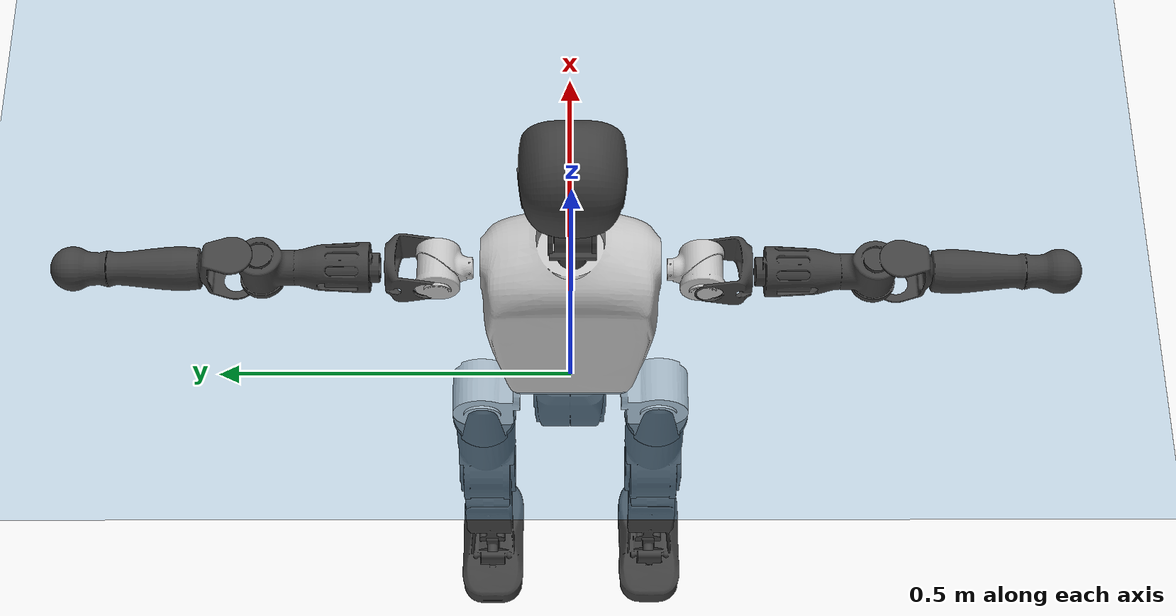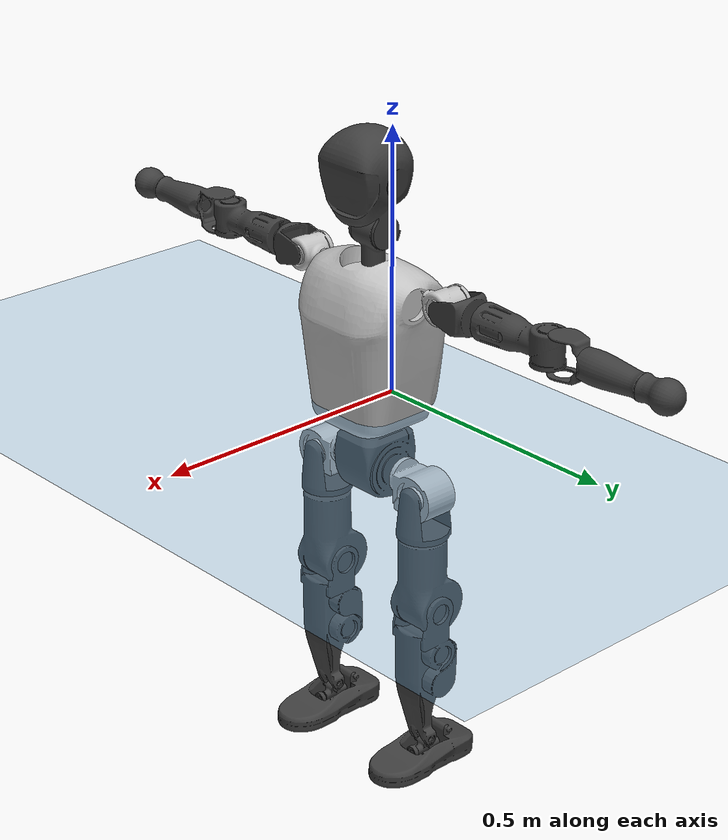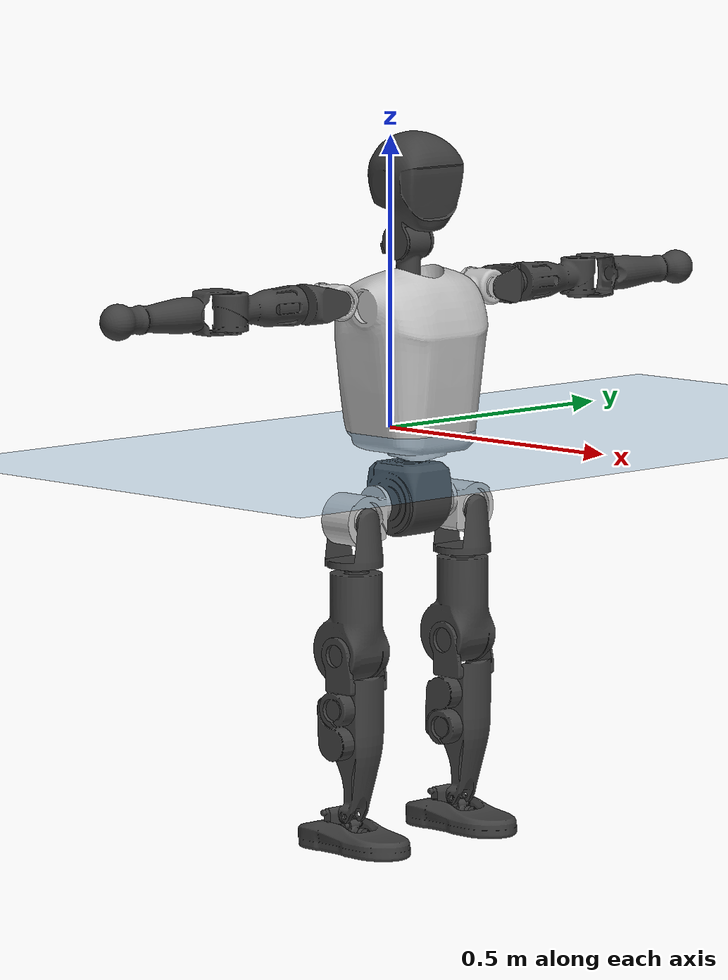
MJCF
<mujoco model="T1">
  <compiler angle="radian" assetdir="assets" balanceinertia="true" inertiafromgeom="false"/>

  <option timestep="0.005" density="1.2" viscosity="2e-05"/>

  <size nkey="1"/>

  <visual>
    <quality shadowsize="8192"/>
    <map shadowclip="0.5"/>
  </visual>

  <default>
    <default class="/">
      <joint armature="0.01" damping="0.01" frictionloss="0.1"/>
      <geom contype="0" conaffinity="0" group="1" solref="-1000 -80"/>
      <site size="0.01 0.005 0.005" group="5"/>
      <general forcelimited="true" biastype="affine" gainprm="25" biasprm="0 -25 -0.6"/>
      <default class="t1">
        <geom rgba="0.25 0.25 0.25 1"/>
        <default class="visual">
          <geom type="mesh" group="2"/>
        </default>
        <default class="collision">
          <geom group="3"/>
        </default>
        <default class="foot">
          <geom size="0.1115 0.05 0.015" type="box" condim="6" group="4" priority="1" solimp="0.015 1 0.015"/>
        </default>
        <default class="reward_collision_sphere">
          <geom group="5" rgba="1 0 0 1"/>
        </default>
      </default>
    </default>
  </default>

  <asset>
    <texture type="skybox" colorspace="auto" name="//unnamed_texture_0" builtin="gradient" rgb1="0.95 0.95 0.95" rgb2="0.95 0.95 0.95" width="100" height="600"/>
    <texture type="2d" colorspace="auto" name="texplane" builtin="checker" rgb1="0.345 0.575 0.748" rgb2="0.345 0.575 0.748" markrgb="1 1 1" width="512" height="512"/>
    <material name="MatPlane" class="/" texture="texplane" texuniform="true" texrepeat="2 2" specular="0.9"/>
    <mesh name="Trunk" class="/" file="Trunk.stl"/>
    <mesh name="H1" class="/" file="H1.stl"/>
    <mesh name="H2" class="/" file="H2.stl"/>
    <mesh name="AL1" class="/" file="AL1.stl"/>
    <mesh name="AL2" class="/" file="AL2.stl"/>
    <mesh name="AL3" class="/" file="AL3.stl"/>
    <mesh name="left_hand_link" class="/" file="left_hand_link.stl"/>
    <mesh name="AR1" class="/" file="AR1.stl"/>
    <mesh name="AR2" class="/" file="AR2.stl"/>
    <mesh name="AR3" class="/" file="AR3.stl"/>
    <mesh name="right_hand_link" class="/" file="right_hand_link.stl"/>
    <mesh name="Waist" class="/" file="Waist.stl"/>
    <mesh name="Hip_Pitch_Left" class="/" file="Hip_Pitch_Left.stl"/>
    <mesh name="Hip_Roll_Left" class="/" file="Hip_Roll_Left.stl"/>
    <mesh name="Hip_Yaw_Left" class="/" file="Hip_Yaw_Left.stl"/>
    <mesh name="Shank_Left" class="/" file="Shank_Left.stl"/>
    <mesh name="Ankle_Cross_Left" class="/" file="Ankle_Cross_Left.stl"/>
    <mesh name="left_foot_link" class="/" file="left_foot_link.stl"/>
    <mesh name="Hip_Pitch_Right" class="/" file="Hip_Pitch_Right.stl"/>
    <mesh name="Hip_Roll_Right" class="/" file="Hip_Roll_Right.stl"/>
    <mesh name="Hip_Yaw_Right" class="/" file="Hip_Yaw_Right.stl"/>
    <mesh name="Shank_Right" class="/" file="Shank_Right.stl"/>
    <mesh name="Ankle_Cross_Right" class="/" file="Ankle_Cross_Right.stl"/>
    <mesh name="right_foot_link" class="/" file="right_foot_link.stl"/>
  </asset>

  <worldbody>
    <geom name="floor" class="/" size="100 100 0.125" type="plane" group="0" material="MatPlane"/>
    <light name="toplight_shadow" class="/" pos="0 0 5" dir="0.0990148 0.0990148 -0.990148" type="directional" ambient="0.04 0.04 0.04" diffuse="0.55 0.55 0.55" specular="0.12 0.12 0.12"/>
    <light name="toplight_fill" class="/" pos="0 0 5" dir="0.0990148 0.0990148 -0.990148" type="directional" castshadow="false" ambient="0.04 0.04 0.04" diffuse="0.3 0.3 0.3" specular="0.08 0.08 0.08"/>
    <body name="trunk" childclass="t1" pos="-0.000157572 0.000899895 0.00100778" quat="1 -7.67961e-06 2.91957e-05 3.10891e-05">
      <inertial pos="0.0384447 0.00221078 0.113226" quat="0.99994 0.00270555 -0.0101809 -0.0031521" mass="11.6363" diaginertia="0.0157064 0.214861 0.0741197"/>
      <joint name="//unnamed_joint_0" type="free" armature="0" damping="0" frictionloss="0"/>
      <geom name="//unnamed_geom_1" class="visual" rgba="0.76 0.76 0.76 1" mesh="Trunk"/>
      <geom name="//unnamed_geom_2" class="collision" size="0.0746307 0.0995076 0.149261" pos="0.0421425 0 0.126674" type="box"/>
      <geom name="//unnamed_geom_3" class="reward_collision_sphere" size="0.114434" pos="0.0421425 0 0.105562"/>
      <geom name="//unnamed_geom_4" class="reward_collision_sphere" size="0.0149261" pos="0.0421425 0.104315 0"/>
      <geom name="//unnamed_geom_5" class="reward_collision_sphere" size="0.0149261" pos="0.0421425 -0.104315 0"/>
      <geom name="//unnamed_geom_6" class="reward_collision_sphere" size="0.0149261" pos="0.0421425 0.131314 0.190011"/>
      <geom name="//unnamed_geom_7" class="reward_collision_sphere" size="0.0149261" pos="0.0421425 -0.131314 0.190011"/>
      <site name="imu" pos="-0.00127067 0.00165872 -0.0050577" size="0.00995076"/>
      <camera name="track" pos="0 -2.45447 0" quat="0.707107 0.707107 0 0" mode="trackcom"/>
      <camera name="ego_camera" pos="0.0856897 0 0.44336" quat="-0.5 -0.5 0.5 0.5"/>
      <body name="H1" pos="0.0439651 -0.00234634 0.258188" quat="1 -7.1541e-05 4.25978e-05 -2.05538e-05">
        <inertial pos="-0.000762197 0.000754931 0.0610895" quat="0.769612 -0.0180761 0.00533766 0.638234" mass="0.426288" diaginertia="4.01275e-05 0.000606631 0.000197963"/>
        <joint name="AAHead_yaw" pos="0 0 0" axis="0.000598412 -0.00351972 0.999994" range="-1.57339 1.52369" armature="0.0097664" damping="0.0182272" frictionloss="0.0864988"/>
        <geom name="//unnamed_geom_8" class="visual" mesh="H1"/>
        <body name="H2" pos="-0.00124229 0.000757078 0.0630569" quat="1 -0.000203169 6.91437e-05 0.00014993">
          <inertial pos="0.00603367 -0.00113377 0.105156" quat="0.989901 0.102926 -0.0703691 -0.0674555" mass="0.626918" diaginertia="0.000347829 0.00538854 0.00231223"/>
          <joint name="Head_pitch" pos="0 0 0" axis="0.00146079 -0.999991 0.00407103" range="-1.23211 0.347152" armature="0.0100277" damping="0.0112247" frictionloss="0.0955009"/>
          <geom name="//unnamed_geom_9" class="visual" mesh="H2"/>
          <geom name="//unnamed_geom_10" class="collision" size="0.0796061" pos="0.00702374 0 0.116118"/>
          <geom name="//unnamed_geom_11" class="reward_collision_sphere" size="0.0895569" pos="0.0140475 0 0.105562"/>
        </body>
      </body>
      <body name="AL1" pos="0.0405147 0.131606 0.231593" quat="0.999999 -0.00111477 0.00105457 9.12583e-05">
        <inertial pos="-0.00047912 0.055388 0.000462806" quat="0.504462 0.504869 -0.502713 0.487755" mass="0.519124" diaginertia="0.000230697 0.00370419 0.000385893"/>
        <joint name="Left_Shoulder_Pitch" pos="0 0 0" axis="-0.000479324 1 0.000194083" stiffness="0.00292019" range="-3.3283 1.26037" armature="0.00990036" damping="0.0132869" frictionloss="0.100208"/>
        <geom name="//unnamed_geom_12" class="visual" rgba="0.76 0.76 0.76 1" mesh="AL1"/>
        <body name="AL2" pos="0.000947452 0.0605398 -0.000684819" quat="1 -0.000173917 0.000202731 -0.000156313">
          <inertial pos="0.00513474 0.0490473 1.72263e-05" quat="0.477714 0.51044 -0.493499 0.517397" mass="0.157828" diaginertia="6.91023e-05 0.000968838 0.000239891"/>
          <joint name="Left_Shoulder_Roll" pos="0 0 0" axis="-0.999998 0.00167962 0.001014" stiffness="0.000777266" range="-1.57513 1.74175" armature="0.00931818" damping="0.0104645" frictionloss="0.103318"/>
          <geom name="//unnamed_geom_13" class="visual" mesh="AL2"/>
          <body name="AL3" pos="0.000387346 0.0772457 0.000877751" quat="1 -1.73357e-05 0.000184076 -1.28466e-05">
            <inertial pos="-0.00264683 0.105304 -0.00062432" quat="0.703481 0.710712 -8.7791e-05 0.00141861" mass="1.04708" diaginertia="0.00228103 0.0361899 0.000822178"/>
            <joint name="Left_Elbow_Pitch" pos="0 0 0" axis="-0.00154782 -0.999999 0.00074919" range="-2.27939 2.31655" armature="0.0102871" damping="0.0163855" frictionloss="0.0994243"/>
            <geom name="//unnamed_geom_14" class="visual" mesh="AL3"/>
            <geom name="//unnamed_geom_15" class="collision" size="0.0298523 0.0746307" pos="0 0.0613618 0" quat="0.707105 0.707108 0 0" type="cylinder"/>
            <geom name="//unnamed_geom_16" class="reward_collision_sphere" size="0.0358228"/>
            <body name="left_hand_link" pos="-0.000116599 0.183375 -0.00178356" quat="1 -3.68114e-05 -9.83716e-05 7.75838e-05">
              <inertial pos="0.000524681 0.134535 0.00108002" quat="0.70937 0.704819 0.00376265 -0.0031256" mass="0.320779" diaginertia="0.00136192 0.0225606 0.000281971"/>
              <joint name="Left_Elbow_Yaw" pos="0 0 0" axis="0.0070512 -0.00423865 0.999966" stiffness="0.00836477" range="-2.49225 -0.0121441" armature="0.0100416" damping="0" frictionloss="0.107859"/>
              <geom name="//unnamed_geom_17" class="visual" mesh="left_hand_link"/>
              <geom name="//unnamed_geom_18" class="collision" size="0.0298523 0.0870692" pos="0 0.159541 0" quat="0.707105 0.707108 0 0" type="cylinder"/>
              <geom name="//unnamed_geom_19" class="reward_collision_sphere" size="0.0497538"/>
              <geom name="//unnamed_geom_20" class="reward_collision_sphere" size="0.0348277" pos="0 0.134996 0"/>
              <geom name="//unnamed_geom_21" class="reward_collision_sphere" size="0.0348277" pos="0 0.263856 0"/>
            </body>
          </body>
        </body>
      </body>
      <body name="AR1" pos="0.0387445 -0.129726 0.230363" quat="1 -0.000115227 0.000604005 -0.000254221">
        <inertial pos="-0.00147307 -0.0551496 -0.00255335" quat="0.495373 0.501651 -0.509548 0.493267" mass="0.530427" diaginertia="0.000231774 0.00355224 0.000385254"/>
        <joint name="Right_Shoulder_Pitch" pos="0 0 0" axis="-0.00341438 -0.999994 0.000798131" stiffness="0.00765715" range="-1.22835 3.31282" armature="0.0101128" damping="0" frictionloss="0.0868411"/>
        <geom name="//unnamed_geom_22" class="visual" rgba="0.76 0.76 0.76 1" mesh="AR1"/>
        <body name="AR2" pos="-0.00200027 -0.0567527 3.29776e-05" quat="1 1.31061e-05 -3.90589e-05 -3.74854e-05">
          <inertial pos="0.0024288 -0.0491328 -0.000558912" quat="0.504051 0.497089 -0.51285 0.485613" mass="0.156678" diaginertia="6.80532e-05 0.00094898 0.000230735"/>
          <joint name="Right_Shoulder_Roll" pos="0 0 0" axis="-0.999992 0.000423993 -0.00391831" stiffness="0.00720329" range="-1.73556 1.57466" armature="0.0100175" damping="0" frictionloss="0.0944509"/>
          <geom name="//unnamed_geom_23" class="visual" mesh="AR2"/>
          <body name="AR3" pos="-0.00141842 -0.0741135 0.000498357" quat="1 0.000185786 8.74611e-05 0.000121329">
            <inertial pos="-0.00135581 -0.105094 0.000791033" quat="0.708608 0.705592 -0.00166491 -0.00330432" mass="1.00922" diaginertia="0.00221202 0.0346396 0.000827699"/>
            <joint name="Right_Elbow_Pitch" pos="0 0 0" axis="0.00419286 0.999991 -2.08622e-05" range="-2.27035 2.24609" armature="0.00985928" damping="0.00877384" frictionloss="0.0961929"/>
            <geom name="//unnamed_geom_24" class="visual" mesh="AR3"/>
            <geom name="//unnamed_geom_25" class="collision" size="0.0298523 0.0746307" pos="0 -0.0613618 0" quat="0.707105 0.707108 0 0" type="cylinder"/>
            <geom name="//unnamed_geom_26" class="reward_collision_sphere" size="0.0358228"/>
            <body name="right_hand_link" pos="-0.00130301 -0.178512 0.00218675" quat="1 -0.000449453 -0.000149569 -8.92285e-05">
              <inertial pos="-0.000364019 -0.133252 -6.30521e-05" quat="0.705546 0.708653 0.00290476 -0.0028451" mass="0.327309" diaginertia="0.00138408 0.0224427 0.000283563"/>
              <joint name="Right_Elbow_Yaw" pos="0 0 0" axis="-0.000528327 -0.00223107 0.999997" range="0.0133829 2.43994" armature="0.00969138" damping="0.00774602" frictionloss="0.11183"/>
              <geom name="//unnamed_geom_27" class="visual" mesh="right_hand_link"/>
              <geom name="//unnamed_geom_28" class="collision" size="0.0298523 0.0870692" pos="0 -0.159541 0" quat="0.707105 0.707108 0 0" type="cylinder"/>
              <geom name="//unnamed_geom_29" class="reward_collision_sphere" size="0.0497538"/>
              <geom name="//unnamed_geom_30" class="reward_collision_sphere" size="0.0348277" pos="0 -0.134996 0"/>
              <geom name="//unnamed_geom_31" class="reward_collision_sphere" size="0.0348277" pos="0 -0.263856 0"/>
            </body>
          </body>
        </body>
      </body>
      <body name="Waist" pos="0.0430132 0.000623632 -0.123883" quat="1 7.57369e-05 -5.58743e-05 6.43736e-05">
        <inertial pos="-0.00125672 -0.0013666 0.00703281" quat="0.983745 -0.000461716 -0.179542 0.00316506" mass="2.48771" diaginertia="0.000884279 0.0145997 0.00611898"/>
        <joint name="Waist" pos="0 0 0" axis="-0.004031 -0.00429366 0.999983" stiffness="0.00199573" range="-1.57374 1.56275" armature="0.010457" damping="0.0154622" frictionloss="0.0994451"/>
        <geom name="//unnamed_geom_32" class="visual" mesh="Waist"/>
        <body name="Hip_Pitch_Left" pos="-0.000282958 0.129407 -0.00204266" quat="1 5.58571e-05 -0.000256086 5.92517e-05">
          <inertial pos="0.000601409 -0.00750674 -0.0182601" quat="0.975125 0.221118 0.0154035 0.000757245" mass="1.03283" diaginertia="0.000308194 0.00409354 0.00163183"/>
          <joint name="Left_Hip_Pitch" pos="0 0 0" axis="-0.00143097 0.999995 0.0028945" range="-1.79909 1.61968" armature="0.0111755" damping="0.012846" frictionloss="0.0948966"/>
          <geom name="//unnamed_geom_33" class="visual" rgba="0.76 0.76 0.76 1" mesh="Hip_Pitch_Left"/>
          <body name="Hip_Roll_Left" pos="0.00227555 -0.000613991 -0.0227894" quat="1 0.000374488 0.000118478 -0.000392008">
            <inertial pos="0.00132377 -0.00024102 -0.0571153" quat="0.709429 -0.00375103 0.00611026 0.704741" mass="0.363044" diaginertia="0.000287647 0.0041727 0.000667205"/>
            <joint name="Left_Hip_Roll" pos="0 0 0" axis="-0.999967 0.00810394 0.00103291" stiffness="0.00528189" range="-1.57002 0.187573" armature="0.0111499" damping="0.0173306" frictionloss="0.0983213"/>
            <geom name="//unnamed_geom_34" class="visual" mesh="Hip_Roll_Left"/>
            <geom name="//unnamed_geom_35" class="reward_collision_sphere" size="0.0547292"/>
            <body name="Hip_Yaw_Left" pos="-0.00083451 -0.000911211 -0.0844273" quat="1 -5.47664e-05 0.000275872 -1.0132e-05">
              <inertial pos="-0.00684745 -0.00137908 -0.0936952" quat="0.696637 -0.0338458 -0.0319945 0.71591" mass="2.16003" diaginertia="0.0043668 0.0681636 0.00337173"/>
              <joint name="Left_Hip_Yaw" pos="0 0 0" axis="-0.00258756 -2.38334e-05 -0.999997" stiffness="0.00252559" range="-1.01357 1.0524" armature="0.00982807" damping="0.00630132" frictionloss="0.100599"/>
              <geom name="//unnamed_geom_36" class="visual" mesh="Hip_Yaw_Left"/>
              <geom name="//unnamed_geom_37" class="collision" size="0.0497538 0.0796061" type="cylinder"/>
              <body name="Shank_Left" pos="-0.00693111 -2.98961e-05 -0.143061" quat="1 9.03451e-05 -1.63118e-05 -0.00016765">
                <inertial pos="-0.00357844 0.00247257 -0.129123" quat="0.997547 0.00141697 -0.0240406 0.0657309" mass="1.64089" diaginertia="0.00590868 0.0956376 0.00239427"/>
                <joint name="Left_Knee_Pitch" pos="0 0 0" axis="0.000526345 0.999991 0.00418979" range="-0.00787905 2.34966" armature="0.00987765" damping="0.0111806" frictionloss="0.104085"/>
                <geom name="//unnamed_geom_38" class="visual" mesh="Shank_Left"/>
                <geom name="//unnamed_geom_39" class="collision" size="0.0497538 0.0746307" pos="0 0 -0.126674" type="cylinder"/>
                <geom name="//unnamed_geom_40" class="reward_collision_sphere" size="0.06468"/>
                <body name="Ankle_Cross_Left" pos="-0.00103243 3.92979e-05 -0.294151" quat="1 2.19984e-05 -1.33453e-05 3.77599e-05">
                  <inertial pos="-0.0019162 0.00144637 -0.00830223" quat="0.439214 0.554256 0.547404 0.447481" mass="0.073253" diaginertia="5.06734e-06 7.05706e-05 1.4796e-05"/>
                  <joint name="Left_Ankle_Pitch" pos="0 0 0" axis="-0.000395416 1 0.000349785" range="-0.821157 0.338455" armature="0.00998628" damping="0.0159818" frictionloss="0.0943141"/>
                  <geom name="//unnamed_geom_41" class="visual" mesh="Ankle_Cross_Left"/>
                  <body name="left_foot_link" pos="0.00111143 -0.00114695 -0.0110158" quat="1 0.00019949 -0.000147038 -6.60912e-05">
                    <inertial pos="-0.00171386 -0.000127184 -0.0114772" quat="0.0018531 0.62302 0.00395346 0.782193" mass="0.661432" diaginertia="0.000435901 0.00648608 0.00288133"/>
                    <joint name="Left_Ankle_Roll" pos="0 0 0" axis="-0.999998 -0.00207432 -0.000201001" range="-0.433888 0.439774" armature="0.010049" damping="0.0165873" frictionloss="0.100049"/>
                    <geom name="//unnamed_geom_42" class="visual" mesh="left_foot_link"/>
                    <geom name="left_foot" class="foot" size="0.104042 0.0488408 0.0155913" pos="0.00702374 0 -0.0158343"/>
                    <geom name="//unnamed_geom_44" class="reward_collision_sphere" size="0.051744" pos="0.00702374 0 -0.0158343"/>
                    <geom name="//unnamed_geom_45" class="reward_collision_sphere" size="0.0298523" pos="0.0667256 -0.0282264 -0.0158343"/>
                    <geom name="//unnamed_geom_46" class="reward_collision_sphere" size="0.0298523" pos="-0.0491662 -0.0282264 -0.0158343"/>
                    <site name="left_foot" class="foot" pos="0.00702374 0 -0.0158343" size="0.00995076"/>
                  </body>
                </body>
              </body>
            </body>
          </body>
        </body>
        <body name="Hip_Pitch_Right" pos="-0.000385556 -0.131014 -8.15635e-05" quat="1 -0.000126522 0.000356443 -0.00081645">
          <inertial pos="-0.00141958 0.0103167 -0.0166946" quat="0.973353 -0.228922 0.0133559 0.000864749" mass="1.02144" diaginertia="0.000312835 0.00418312 0.00160611"/>
          <joint name="Right_Hip_Pitch" pos="0 0 0" axis="-0.000286001 -1 -0.000281379" range="-1.56966 1.74688" armature="0.00945595" damping="0.0113328" frictionloss="0.0999231"/>
          <geom name="//unnamed_geom_47" class="visual" rgba="0.76 0.76 0.76 1" mesh="Hip_Pitch_Right"/>
          <body name="Hip_Roll_Right" pos="0.0022005 0.000328394 -0.0226076" quat="1 -0.000121342 -3.88026e-05 -9.1382e-05">
            <inertial pos="0.00110531 -0.00121461 -0.0557974" quat="0.700615 0.0022477 -0.00260394 0.713531" mass="0.386168" diaginertia="0.000298391 0.00436313 0.000678771"/>
            <joint name="Right_Hip_Roll" pos="0 0 0" axis="-0.999989 0.00099997 0.004505" stiffness="0.00105749" range="-0.14911 1.59288" armature="0.0100051" damping="0.00769881" frictionloss="0.0994615"/>
            <geom name="//unnamed_geom_48" class="visual" mesh="Hip_Roll_Right"/>
            <geom name="//unnamed_geom_49" class="reward_collision_sphere" size="0.0547292"/>
            <body name="Hip_Yaw_Right" pos="0.00111658 0.00100632 -0.0874787" quat="1 -0.000217051 1.78883e-06 -0.000236226">
              <inertial pos="-0.00494336 -0.000564683 -0.0967272" quat="0.716763 -0.0285663 -0.0310794 0.696037" mass="2.09066" diaginertia="0.00437465 0.0699028 0.0033374"/>
              <joint name="Right_Hip_Yaw" pos="0 0 0" axis="0.0117641 -0.0106714 -0.999874" stiffness="0.00438837" range="-1.00458 0.989205" armature="0.0109955" damping="0" frictionloss="0.0996016"/>
              <geom name="//unnamed_geom_50" class="visual" mesh="Hip_Yaw_Right"/>
              <geom name="//unnamed_geom_51" class="collision" size="0.0497538 0.0796061" type="cylinder"/>
              <body name="Shank_Right" pos="-0.00880635 -0.000725027 -0.139707" quat="1 0.000120117 -3.46774e-05 6.03557e-05">
                <inertial pos="-0.00449257 -0.000936826 -0.131228" quat="0.999295 -0.00096162 -0.0219979 -0.0304078" mass="1.82593" diaginertia="0.00628796 0.100179 0.00264537"/>
                <joint name="Right_Knee_Pitch" pos="0 0 0" axis="-0.000769682 -0.999998 0.00196297" range="-2.29282 -0.0170765" armature="0.0111998" damping="0.0134002" frictionloss="0.099712"/>
                <geom name="//unnamed_geom_52" class="visual" mesh="Shank_Right"/>
                <geom name="//unnamed_geom_53" class="collision" size="0.0497538 0.0746307" pos="0 0 -0.126674" type="cylinder"/>
                <geom name="//unnamed_geom_54" class="reward_collision_sphere" size="0.06468"/>
                <body name="Ankle_Cross_Right" pos="-3.39205e-05 -0.00144097 -0.296554" quat="1 -0.000127824 -4.67826e-06 -6.74058e-05">
                  <inertial pos="-0.00226743 -0.000520708 -0.00843287" quat="0.443762 0.554308 0.548448 0.441614" mass="0.0713676" diaginertia="5.0403e-06 7.24711e-05 1.47755e-05"/>
                  <joint name="Right_Ankle_Pitch" pos="0 0 0" axis="0.000179885 -1 5.29353e-05" range="-0.391721 0.825215" armature="0.00993915" damping="0.00941304" frictionloss="0.103736"/>
                  <geom name="//unnamed_geom_55" class="visual" mesh="Ankle_Cross_Right"/>
                  <body name="right_foot_link" pos="0.00260894 -0.000919465 -0.0131451" quat="1 -1.74753e-05 1.14652e-05 6.85436e-05">
                    <inertial pos="-0.00265191 0.000701133 -0.00938827" quat="0.000255036 0.620901 0.00039338 0.783889" mass="0.679857" diaginertia="0.00046324 0.00653996 0.0028982"/>
                    <joint name="Right_Ankle_Roll" pos="0 0 0" axis="-0.999994 -0.00172788 -0.00309783" range="-0.488854 0.437897" armature="0.0100419" damping="0" frictionloss="0.0986707"/>
                    <geom name="//unnamed_geom_56" class="visual" mesh="right_foot_link"/>
                    <geom name="right_foot" class="foot" size="0.101043 0.0462269 0.0152679" pos="0.00702374 0 -0.0158343"/>
                    <geom name="//unnamed_geom_58" class="reward_collision_sphere" size="0.0398031"/>
                    <geom name="//unnamed_geom_59" class="reward_collision_sphere" size="0.0298523" pos="0.00702374 0 -0.0158343"/>
                    <geom name="//unnamed_geom_60" class="reward_collision_sphere" size="0.0298523" pos="0.0667256 0.0282264 -0.0158343"/>
                    <geom name="//unnamed_geom_61" class="reward_collision_sphere" size="0.0298523" pos="-0.0491662 0.0282264 -0.0158343"/>
                    <site name="right_foot" class="foot" pos="0.00702374 0 -0.0158343" size="0.00995076"/>
                  </body>
                </body>
              </body>
            </body>
          </body>
        </body>
      </body>
    </body>
  </worldbody>

  <contact>
    <pair class="/" geom1="floor" geom2="left_foot" name="//unnamed_contact_0"/>
    <pair class="/" geom1="floor" geom2="right_foot" name="//unnamed_contact_1"/>
  </contact>

  <actuator>
    <general name="AAHead_yaw" class="/" joint="AAHead_yaw" forcerange="-6.68908 6.68908" gainprm="24.0432" biasprm="0 -24.0432 -0.586345"/>
    <general name="Head_pitch" class="/" joint="Head_pitch" forcerange="-6.94477 6.94477" gainprm="24.0432" biasprm="0 -24.0432 -0.586345"/>
    <general name="Left_Shoulder_Pitch" class="/" joint="Left_Shoulder_Pitch" forcerange="-17.5514 17.5514" gainprm="24.0432" biasprm="0 -24.0432 -0.586345"/>
    <general name="Left_Shoulder_Roll" class="/" joint="Left_Shoulder_Roll" forcerange="-18.4826 18.4826" gainprm="24.0432" biasprm="0 -24.0432 -0.586345"/>
    <general name="Left_Elbow_Pitch" class="/" joint="Left_Elbow_Pitch" forcerange="-18.1501 18.1501" gainprm="24.0432" biasprm="0 -24.0432 -0.586345"/>
    <general name="Left_Elbow_Yaw" class="/" joint="Left_Elbow_Yaw" forcerange="-18.7532 18.7532" gainprm="24.0432" biasprm="0 -24.0432 -0.586345"/>
    <general name="Right_Shoulder_Pitch" class="/" joint="Right_Shoulder_Pitch" forcerange="-17.3205 17.3205" gainprm="24.0432" biasprm="0 -24.0432 -0.586345"/>
    <general name="Right_Shoulder_Roll" class="/" joint="Right_Shoulder_Roll" forcerange="-17.8267 17.8267" gainprm="24.0432" biasprm="0 -24.0432 -0.586345"/>
    <general name="Right_Elbow_Pitch" class="/" joint="Right_Elbow_Pitch" forcerange="-19.5714 19.5714" gainprm="24.0432" biasprm="0 -24.0432 -0.586345"/>
    <general name="Right_Elbow_Yaw" class="/" joint="Right_Elbow_Yaw" forcerange="-17.1366 17.1366" gainprm="24.0432" biasprm="0 -24.0432 -0.586345"/>
    <general name="Waist" class="/" joint="Waist" forcerange="-29.0038 29.0038" gainprm="24.0432" biasprm="0 -24.0432 -0.586345"/>
    <general name="Left_Hip_Pitch" class="/" joint="Left_Hip_Pitch" forcerange="-45.0614 45.0614" gainprm="24.0432" biasprm="0 -24.0432 -0.586345"/>
    <general name="Left_Hip_Roll" class="/" joint="Left_Hip_Roll" forcerange="-31.5792 31.5792" gainprm="24.0432" biasprm="0 -24.0432 -0.586345"/>
    <general name="Left_Hip_Yaw" class="/" joint="Left_Hip_Yaw" forcerange="-27.8173 27.8173" gainprm="24.0432" biasprm="0 -24.0432 -0.586345"/>
    <general name="Left_Knee_Pitch" class="/" joint="Left_Knee_Pitch" forcerange="-59.077 59.077" gainprm="24.0432" biasprm="0 -24.0432 -0.586345"/>
    <general name="Left_Ankle_Pitch" class="/" joint="Left_Ankle_Pitch" forcerange="-20.1549 20.1549" gainprm="24.0432" biasprm="0 -24.0432 -0.586345"/>
    <general name="Left_Ankle_Roll" class="/" joint="Left_Ankle_Roll" forcerange="-16.1498 16.1498" gainprm="24.0432" biasprm="0 -24.0432 -0.586345"/>
    <general name="Right_Hip_Pitch" class="/" joint="Right_Hip_Pitch" forcerange="-44.7637 44.7637" gainprm="24.0432" biasprm="0 -24.0432 -0.586345"/>
    <general name="Right_Hip_Roll" class="/" joint="Right_Hip_Roll" forcerange="-29.53 29.53" gainprm="24.0432" biasprm="0 -24.0432 -0.586345"/>
    <general name="Right_Hip_Yaw" class="/" joint="Right_Hip_Yaw" forcerange="-32.7315 32.7315" gainprm="24.0432" biasprm="0 -24.0432 -0.586345"/>
    <general name="Right_Knee_Pitch" class="/" joint="Right_Knee_Pitch" forcerange="-59.7336 59.7336" gainprm="24.0432" biasprm="0 -24.0432 -0.586345"/>
    <general name="Right_Ankle_Pitch" class="/" joint="Right_Ankle_Pitch" forcerange="-20.447 20.447" gainprm="24.0432" biasprm="0 -24.0432 -0.586345"/>
    <general name="Right_Ankle_Roll" class="/" joint="Right_Ankle_Roll" forcerange="-14.6972 14.6972" gainprm="24.0432" biasprm="0 -24.0432 -0.586345"/>
  </actuator>

  <sensor>
    <gyro site="imu" name="imu_angular_velocity"/>
    <velocimeter site="imu" name="imu_linear_velocity"/>
    <framelinvel objtype="site" objname="left_foot" name="left_foot_global_linear_velocity"/>
    <framelinvel objtype="site" objname="right_foot" name="right_foot_global_linear_velocity"/>
  </sensor>

  <keyframe>
    <key name="home" qpos="0 0 0.6385 1 0 0 0 0 0 0 1.4 0 -0.4 0 -1.4 0 0.4 0 -0.4 0 0 0.8 -0.4 0 0.4 0 0 -0.8 0.4 0"/>
  </keyframe>
</mujoco>
